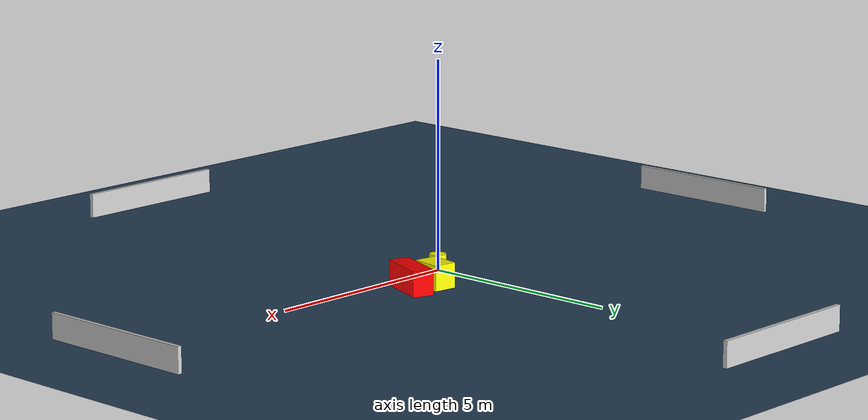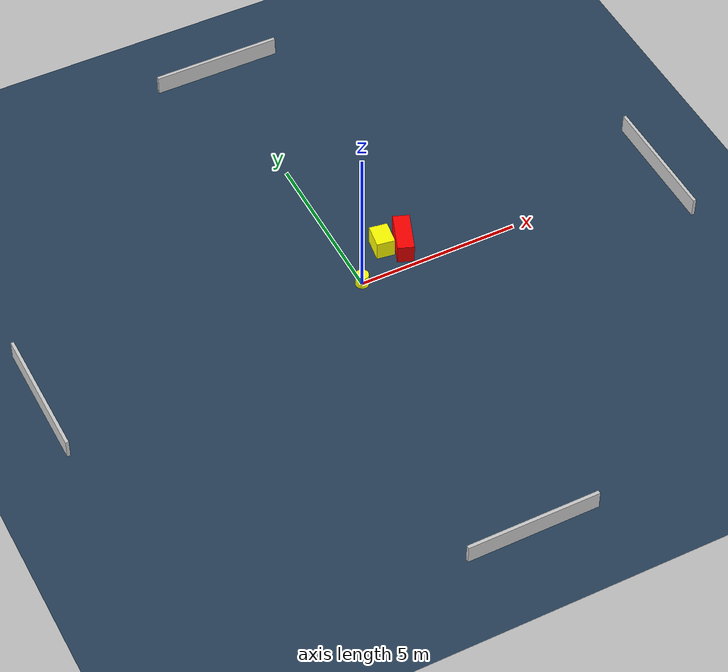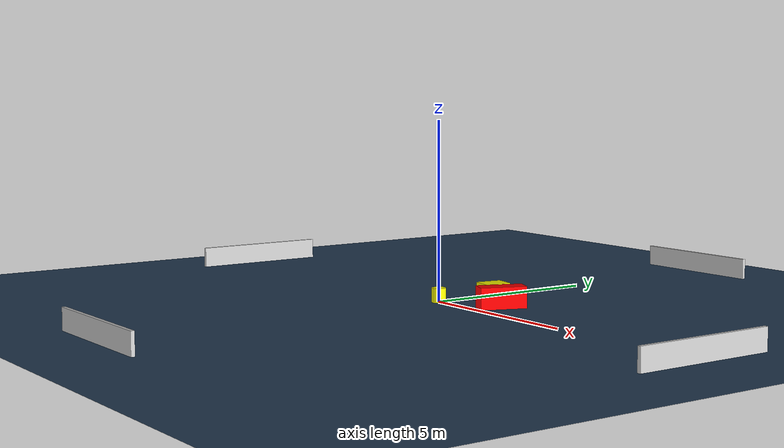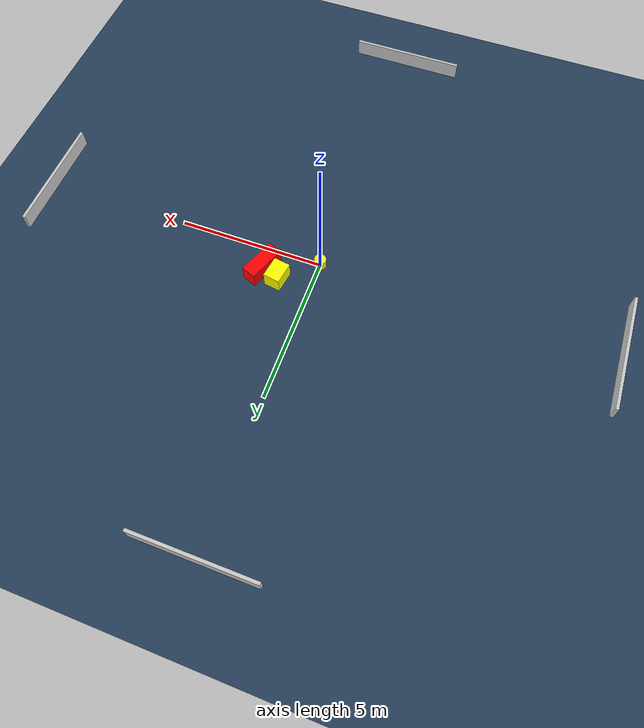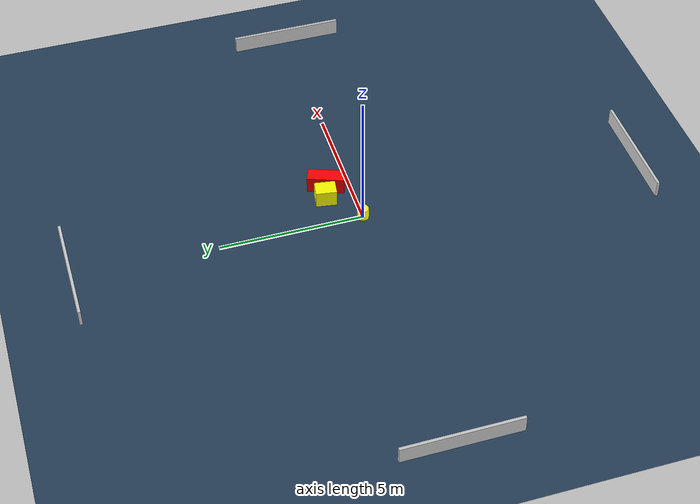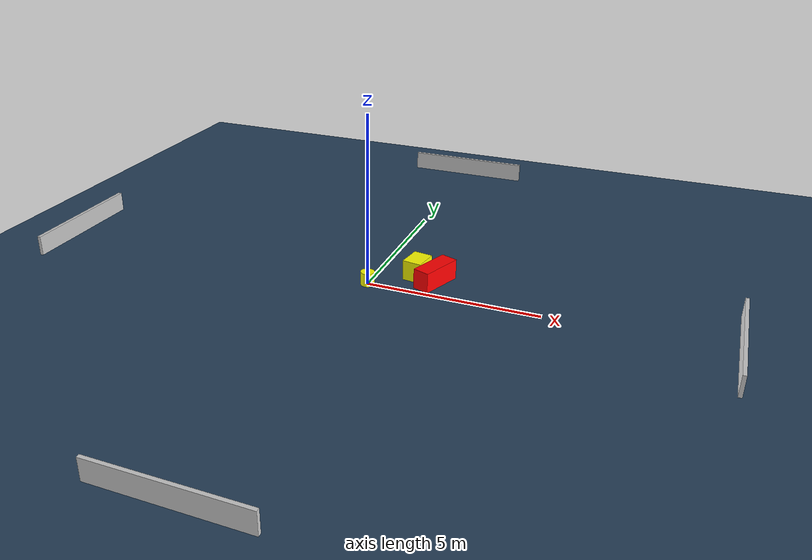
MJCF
<?xml version="1.0" ?>
<mujoco model="generated_environment">
  <option timestep="0.01" integrator="RK4" cone="elliptic"/>
  <default>
    <geom density="1"/>
  </default>
  <asset>
    <texture builtin="gradient" height="3072" name="skybox" rgb1="0.3 0.5 0.7" rgb2="0 0 0" type="skybox" width="512"/>
    <texture builtin="checker" height="300" name="groundplane" rgb1="0.2 0.3 0.4" rgb2="0.1 0.2 0.3" type="2d" width="300"/>
    <material name="groundplane" reflectance="0.2" texrepeat="5 5" texture="groundplane"/>
  </asset>
  <worldbody>
    <light dir="0 0 -1" directional="true" pos="0 0 1.5"/>
    <geom condim="3" friction="0.5 0.005 0.001" material="groundplane" name="floor" pos="0 0 0" size="0 0 0.05" type="plane"/>
    <body name="walls">
      <geom name="wall_1" condim="4" pos="-10.0 0.0 0.3" rgba="0.800000011920929 0.800000011920929 0.800000011920929 1.0" size="0.05 2.0 0.3" type="box"/>
      <geom name="wall_2" condim="4" pos="10.0 0.0 0.3" rgba="0.800000011920929 0.800000011920929 0.800000011920929 1.0" size="0.05 2.0 0.3" type="box"/>
      <geom name="wall_3" condim="4" pos="0.0 -10.0 0.3" rgba="0.800000011920929 0.800000011920929 0.800000011920929 1.0" size="2.0 0.05 0.3" type="box"/>
      <geom name="wall_4" condim="4" pos="0.0 10.0 0.3" rgba="0.800000011920929 0.800000011920929 0.800000011920929 1.0" size="2.0 0.05 0.3" type="box"/>
    </body>
    <body name="robot">
      <joint name="joint_x" type="slide" pos="0 0 0" axis="1 0 0"/>
      <joint name="joint_y" type="slide" pos="0 0 0" axis="0 1 0"/>
      <geom name="robot" type="cylinder" pos="0.0 0.0 0.2" size="0.2 0.2 0.0" mass="5.0" friction="1.0 0.005 0.0001" condim="4" rgba="1.0 1.0 0.0 1.0"/>
    </body>
    <body name="obstacle_1_movable">
      <geom name="obstacle_1_movable" condim="4" pos="1.1534853987261837 0.9885335327797725 0.3" euler="0 0 171.35653691749383" friction="0.0 0.005 0.001" rgba="1.0 1.0 0.0 1.0" size="0.28061531438299786 0.3648730222196027 0.3" type="box" mass="0.1"/>
      <joint type="free"/>
    </body>
    <body name="obstacle_2_static">
      <geom name="obstacle_2_static" condim="4" pos="1.7589130099548946 0.7941588748210349 0.3" euler="0 0 69.006056453231" friction="0.0 0.005 0.001" rgba="1.0 0.0 0.0 1.0" size="0.6460587639588894 0.25231304487234185 0.3" type="box"/>
    </body>
  </worldbody>
  <actuator>
    <motor name="actuator_x" joint="joint_x" gear="1" ctrlrange="-1 1"/>
    <motor name="actuator_y" joint="joint_y" gear="1" ctrlrange="-1 1"/>
  </actuator>
</mujoco>
